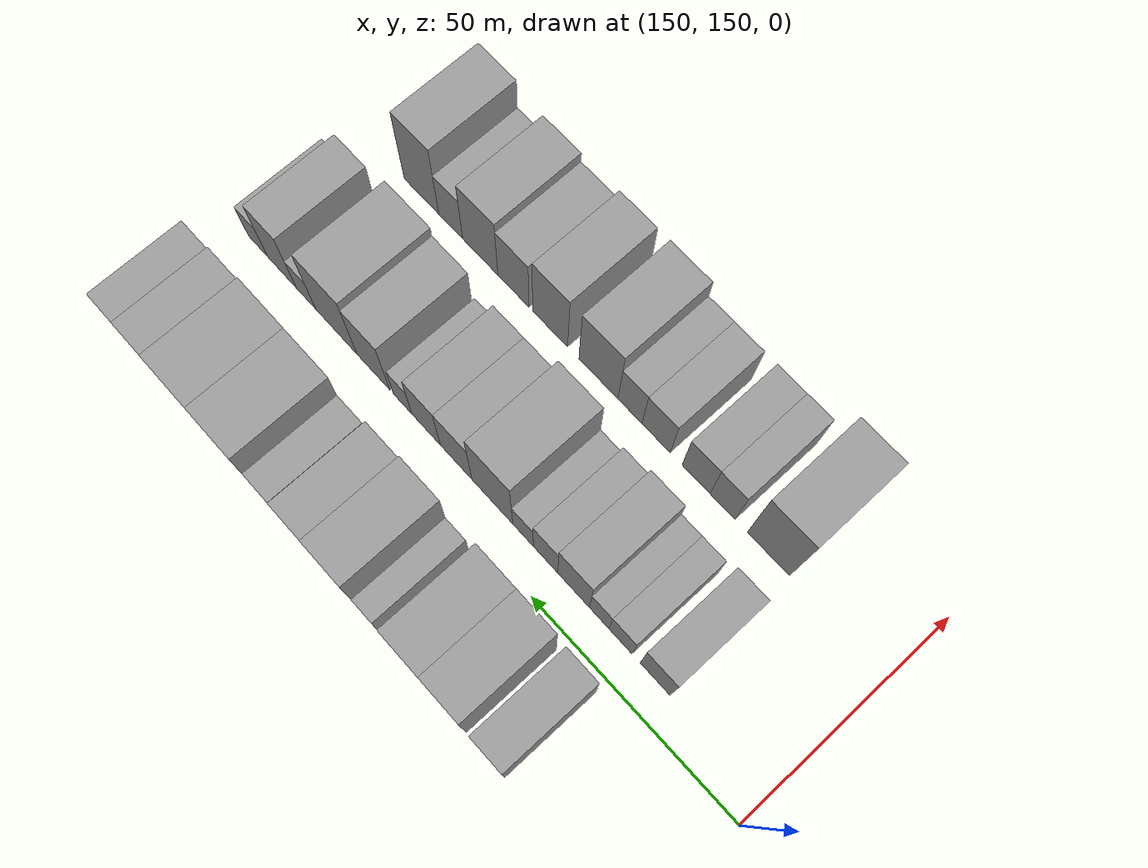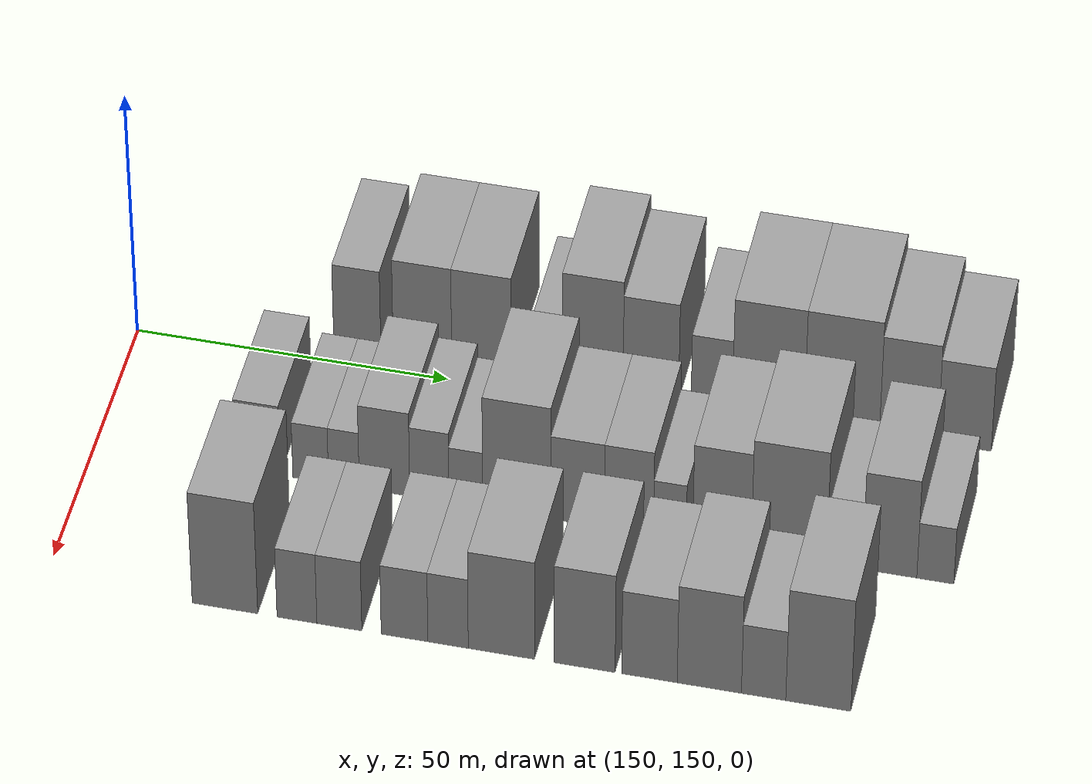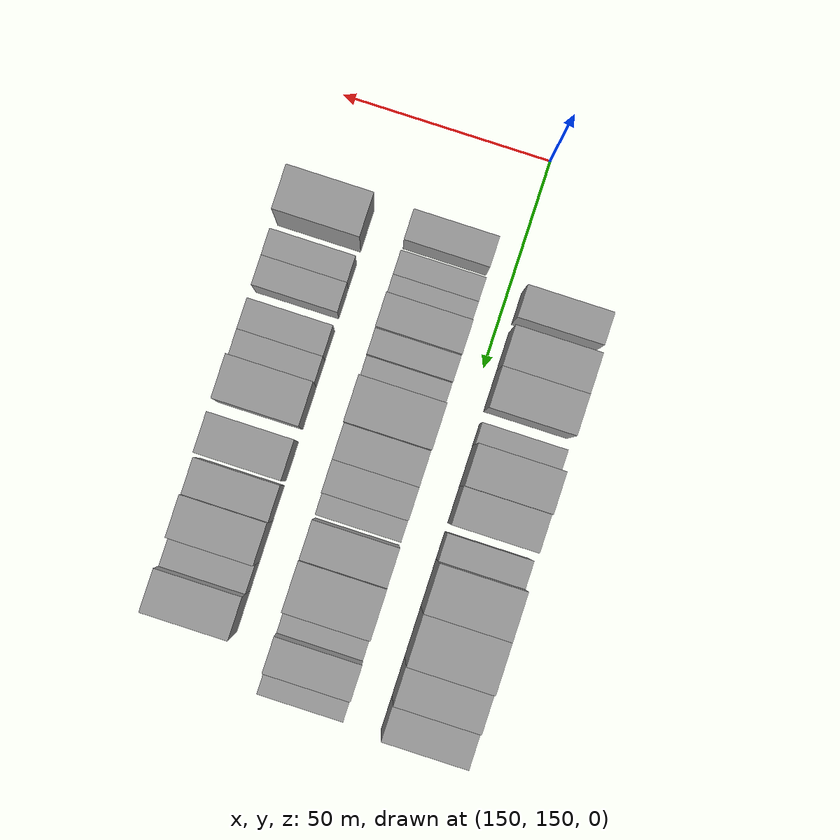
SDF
<sdf version="1.6">
 <world name="default">
  <model name="building_414">
   <static>1</static>
   <pose>137.0000 184.7679 0 0.000000 0.000000 0.000000</pose>
   <link name="link">
    <pose>0 0 9.00 0 0 0</pose>
    <collision name="collision"><geometry><box><size>20.0000 7.5813 18.0000</size></box></geometry></collision>
    <visual name="visual">
     <cast_shadows>0</cast_shadows>
     <geometry><box><size>20.0000 7.5813 18.0000</size></box></geometry>
     <material>
      <script>
       <uri>model://grey_wall/materials/scripts</uri>
       <uri>model://grey_wall/materials/textures</uri>
       <name>vrc/grey_wall</name>
      </script>
     </material>
    </visual>
   </link>
  </model>
  <model name="building_415">
   <static>1</static>
   <pose>137.0000 195.2548 0 0.000000 0.000000 0.000000</pose>
   <link name="link">
    <pose>0 0 10.50 0 0 0</pose>
    <collision name="collision"><geometry><box><size>20.0000 9.3926 21.0000</size></box></geometry></collision>
    <visual name="visual">
     <cast_shadows>0</cast_shadows>
     <geometry><box><size>20.0000 9.3926 21.0000</size></box></geometry>
     <material>
      <script>
       <uri>model://grey_wall/materials/scripts</uri>
       <uri>model://grey_wall/materials/textures</uri>
       <name>vrc/grey_wall</name>
      </script>
     </material>
    </visual>
   </link>
  </model>
  <model name="building_416">
   <static>1</static>
   <pose>137.0000 204.7293 0 0.000000 0.000000 0.000000</pose>
   <link name="link">
    <pose>0 0 10.50 0 0 0</pose>
    <collision name="collision"><geometry><box><size>20.0000 9.5563 21.0000</size></box></geometry></collision>
    <visual name="visual">
     <cast_shadows>0</cast_shadows>
     <geometry><box><size>20.0000 9.5563 21.0000</size></box></geometry>
     <material>
      <script>
       <uri>model://grey_wall/materials/scripts</uri>
       <uri>model://grey_wall/materials/textures</uri>
       <name>vrc/grey_wall</name>
      </script>
     </material>
    </visual>
   </link>
  </model>
  <model name="building_417">
   <static>1</static>
   <pose>137.0000 215.0780 0 0.000000 0.000000 0.000000</pose>
   <link name="link">
    <pose>0 0 6.00 0 0 0</pose>
    <collision name="collision"><geometry><box><size>20.0000 5.1411 12.0000</size></box></geometry></collision>
    <visual name="visual">
     <cast_shadows>0</cast_shadows>
     <geometry><box><size>20.0000 5.1411 12.0000</size></box></geometry>
     <material>
      <script>
       <uri>model://grey_wall/materials/scripts</uri>
       <uri>model://grey_wall/materials/textures</uri>
       <name>vrc/grey_wall</name>
      </script>
     </material>
    </visual>
   </link>
  </model>
  <model name="building_418">
   <static>1</static>
   <pose>137.0000 222.4908 0 0.000000 0.000000 0.000000</pose>
   <link name="link">
    <pose>0 0 12.00 0 0 0</pose>
    <collision name="collision"><geometry><box><size>20.0000 9.6844 24.0000</size></box></geometry></collision>
    <visual name="visual">
     <cast_shadows>0</cast_shadows>
     <geometry><box><size>20.0000 9.6844 24.0000</size></box></geometry>
     <material>
      <script>
       <uri>model://grey_wall/materials/scripts</uri>
       <uri>model://grey_wall/materials/textures</uri>
       <name>vrc/grey_wall</name>
      </script>
     </material>
    </visual>
   </link>
  </model>
  <model name="building_419">
   <static>1</static>
   <pose>137.0000 231.7524 0 0.000000 0.000000 0.000000</pose>
   <link name="link">
    <pose>0 0 10.50 0 0 0</pose>
    <collision name="collision"><geometry><box><size>20.0000 8.8389 21.0000</size></box></geometry></collision>
    <visual name="visual">
     <cast_shadows>0</cast_shadows>
     <geometry><box><size>20.0000 8.8389 21.0000</size></box></geometry>
     <material>
      <script>
       <uri>model://grey_wall/materials/scripts</uri>
       <uri>model://grey_wall/materials/textures</uri>
       <name>vrc/grey_wall</name>
      </script>
     </material>
    </visual>
   </link>
  </model>
  <model name="building_420">
   <static>1</static>
   <pose>137.0000 241.4376 0 0.000000 0.000000 0.000000</pose>
   <link name="link">
    <pose>0 0 7.50 0 0 0</pose>
    <collision name="collision"><geometry><box><size>20.0000 6.5314 15.0000</size></box></geometry></collision>
    <visual name="visual">
     <cast_shadows>0</cast_shadows>
     <geometry><box><size>20.0000 6.5314 15.0000</size></box></geometry>
     <material>
      <script>
       <uri>model://grey_wall/materials/scripts</uri>
       <uri>model://grey_wall/materials/textures</uri>
       <name>vrc/grey_wall</name>
      </script>
     </material>
    </visual>
   </link>
  </model>
  <model name="building_421">
   <static>1</static>
   <pose>137.0000 250.4019 0 0.000000 0.000000 0.000000</pose>
   <link name="link">
    <pose>0 0 12.00 0 0 0</pose>
    <collision name="collision"><geometry><box><size>20.0000 11.3972 24.0000</size></box></geometry></collision>
    <visual name="visual">
     <cast_shadows>0</cast_shadows>
     <geometry><box><size>20.0000 11.3972 24.0000</size></box></geometry>
     <material>
      <script>
       <uri>model://grey_wall/materials/scripts</uri>
       <uri>model://grey_wall/materials/textures</uri>
       <name>vrc/grey_wall</name>
      </script>
     </material>
    </visual>
   </link>
  </model>
  <model name="building_422">
   <static>1</static>
   <pose>137.0000 262.0437 0 0.000000 0.000000 0.000000</pose>
   <link name="link">
    <pose>0 0 12.00 0 0 0</pose>
    <collision name="collision"><geometry><box><size>20.0000 11.8865 24.0000</size></box></geometry></collision>
    <visual name="visual">
     <cast_shadows>0</cast_shadows>
     <geometry><box><size>20.0000 11.8865 24.0000</size></box></geometry>
     <material>
      <script>
       <uri>model://grey_wall/materials/scripts</uri>
       <uri>model://grey_wall/materials/textures</uri>
       <name>vrc/grey_wall</name>
      </script>
     </material>
    </visual>
   </link>
  </model>
  <model name="building_423">
   <static>1</static>
   <pose>137.0000 272.5657 0 0.000000 0.000000 0.000000</pose>
   <link name="link">
    <pose>0 0 10.50 0 0 0</pose>
    <collision name="collision"><geometry><box><size>20.0000 9.1575 21.0000</size></box></geometry></collision>
    <visual name="visual">
     <cast_shadows>0</cast_shadows>
     <geometry><box><size>20.0000 9.1575 21.0000</size></box></geometry>
     <material>
      <script>
       <uri>model://grey_wall/materials/scripts</uri>
       <uri>model://grey_wall/materials/textures</uri>
       <name>vrc/grey_wall</name>
      </script>
     </material>
    </visual>
   </link>
  </model>
  <model name="building_424">
   <static>1</static>
   <pose>137.0000 281.3518 0 0.000000 0.000000 0.000000</pose>
   <link name="link">
    <pose>0 0 9.00 0 0 0</pose>
    <collision name="collision"><geometry><box><size>20.0000 8.4146 18.0000</size></box></geometry></collision>
    <visual name="visual">
     <cast_shadows>0</cast_shadows>
     <geometry><box><size>20.0000 8.4146 18.0000</size></box></geometry>
     <material>
      <script>
       <uri>model://grey_wall/materials/scripts</uri>
       <uri>model://grey_wall/materials/textures</uri>
       <name>vrc/grey_wall</name>
      </script>
     </material>
    </visual>
   </link>
  </model>
  <model name="building_527">
   <static>1</static>
   <pose>166.0000 175.9674 0 0.000000 0.000000 0.000000</pose>
   <link name="link">
    <pose>0 0 7.50 0 0 0</pose>
    <collision name="collision"><geometry><box><size>20.0000 7.1979 15.0000</size></box></geometry></collision>
    <visual name="visual">
     <cast_shadows>0</cast_shadows>
     <geometry><box><size>20.0000 7.1979 15.0000</size></box></geometry>
     <material>
      <script>
       <uri>model://grey_wall/materials/scripts</uri>
       <uri>model://grey_wall/materials/textures</uri>
       <name>vrc/grey_wall</name>
      </script>
     </material>
    </visual>
   </link>
  </model>
  <model name="building_528">
   <static>1</static>
   <pose>166.0000 184.3919 0 0.000000 0.000000 0.000000</pose>
   <link name="link">
    <pose>0 0 6.00 0 0 0</pose>
    <collision name="collision"><geometry><box><size>20.0000 5.6510 12.0000</size></box></geometry></collision>
    <visual name="visual">
     <cast_shadows>0</cast_shadows>
     <geometry><box><size>20.0000 5.6510 12.0000</size></box></geometry>
     <material>
      <script>
       <uri>model://grey_wall/materials/scripts</uri>
       <uri>model://grey_wall/materials/textures</uri>
       <name>vrc/grey_wall</name>
      </script>
     </material>
    </visual>
   </link>
  </model>
  <model name="building_529">
   <static>1</static>
   <pose>166.0000 189.6509 0 0.000000 0.000000 0.000000</pose>
   <link name="link">
    <pose>0 0 6.00 0 0 0</pose>
    <collision name="collision"><geometry><box><size>20.0000 4.8671 12.0000</size></box></geometry></collision>
    <visual name="visual">
     <cast_shadows>0</cast_shadows>
     <geometry><box><size>20.0000 4.8671 12.0000</size></box></geometry>
     <material>
      <script>
       <uri>model://grey_wall/materials/scripts</uri>
       <uri>model://grey_wall/materials/textures</uri>
       <name>vrc/grey_wall</name>
      </script>
     </material>
    </visual>
   </link>
  </model>
  <model name="building_530">
   <static>1</static>
   <pose>166.0000 196.0736 0 0.000000 0.000000 0.000000</pose>
   <link name="link">
    <pose>0 0 9.00 0 0 0</pose>
    <collision name="collision"><geometry><box><size>20.0000 7.9782 18.0000</size></box></geometry></collision>
    <visual name="visual">
     <cast_shadows>0</cast_shadows>
     <geometry><box><size>20.0000 7.9782 18.0000</size></box></geometry>
     <material>
      <script>
       <uri>model://grey_wall/materials/scripts</uri>
       <uri>model://grey_wall/materials/textures</uri>
       <name>vrc/grey_wall</name>
      </script>
     </material>
    </visual>
   </link>
  </model>
  <model name="building_531">
   <static>1</static>
   <pose>166.0000 203.1543 0 0.000000 0.000000 0.000000</pose>
   <link name="link">
    <pose>0 0 7.50 0 0 0</pose>
    <collision name="collision"><geometry><box><size>20.0000 6.1832 15.0000</size></box></geometry></collision>
    <visual name="visual">
     <cast_shadows>0</cast_shadows>
     <geometry><box><size>20.0000 6.1832 15.0000</size></box></geometry>
     <material>
      <script>
       <uri>model://grey_wall/materials/scripts</uri>
       <uri>model://grey_wall/materials/textures</uri>
       <name>vrc/grey_wall</name>
      </script>
     </material>
    </visual>
   </link>
  </model>
  <model name="building_532">
   <static>1</static>
   <pose>166.0000 208.8924 0 0.000000 0.000000 0.000000</pose>
   <link name="link">
    <pose>0 0 6.00 0 0 0</pose>
    <collision name="collision"><geometry><box><size>20.0000 5.2931 12.0000</size></box></geometry></collision>
    <visual name="visual">
     <cast_shadows>0</cast_shadows>
     <geometry><box><size>20.0000 5.2931 12.0000</size></box></geometry>
     <material>
      <script>
       <uri>model://grey_wall/materials/scripts</uri>
       <uri>model://grey_wall/materials/textures</uri>
       <name>vrc/grey_wall</name>
      </script>
     </material>
    </visual>
   </link>
  </model>
  <model name="building_533">
   <static>1</static>
   <pose>166.0000 216.8849 0 0.000000 0.000000 0.000000</pose>
   <link name="link">
    <pose>0 0 12.00 0 0 0</pose>
    <collision name="collision"><geometry><box><size>20.0000 10.6918 24.0000</size></box></geometry></collision>
    <visual name="visual">
     <cast_shadows>0</cast_shadows>
     <geometry><box><size>20.0000 10.6918 24.0000</size></box></geometry>
     <material>
      <script>
       <uri>model://grey_wall/materials/scripts</uri>
       <uri>model://grey_wall/materials/textures</uri>
       <name>vrc/grey_wall</name>
      </script>
     </material>
    </visual>
   </link>
  </model>
  <model name="building_534">
   <static>1</static>
   <pose>166.0000 226.4181 0 0.000000 0.000000 0.000000</pose>
   <link name="link">
    <pose>0 0 9.00 0 0 0</pose>
    <collision name="collision"><geometry><box><size>20.0000 8.3746 18.0000</size></box></geometry></collision>
    <visual name="visual">
     <cast_shadows>0</cast_shadows>
     <geometry><box><size>20.0000 8.3746 18.0000</size></box></geometry>
     <material>
      <script>
       <uri>model://grey_wall/materials/scripts</uri>
       <uri>model://grey_wall/materials/textures</uri>
       <name>vrc/grey_wall</name>
      </script>
     </material>
    </visual>
   </link>
  </model>
  <model name="building_535">
   <static>1</static>
   <pose>166.0000 234.4471 0 0.000000 0.000000 0.000000</pose>
   <link name="link">
    <pose>0 0 9.00 0 0 0</pose>
    <collision name="collision"><geometry><box><size>20.0000 7.6834 18.0000</size></box></geometry></collision>
    <visual name="visual">
     <cast_shadows>0</cast_shadows>
     <geometry><box><size>20.0000 7.6834 18.0000</size></box></geometry>
     <material>
      <script>
       <uri>model://grey_wall/materials/scripts</uri>
       <uri>model://grey_wall/materials/textures</uri>
       <name>vrc/grey_wall</name>
      </script>
     </material>
    </visual>
   </link>
  </model>
  <model name="building_536">
   <static>1</static>
   <pose>166.0000 240.8388 0 0.000000 0.000000 0.000000</pose>
   <link name="link">
    <pose>0 0 6.00 0 0 0</pose>
    <collision name="collision"><geometry><box><size>20.0000 5.1000 12.0000</size></box></geometry></collision>
    <visual name="visual">
     <cast_shadows>0</cast_shadows>
     <geometry><box><size>20.0000 5.1000 12.0000</size></box></geometry>
     <material>
      <script>
       <uri>model://grey_wall/materials/scripts</uri>
       <uri>model://grey_wall/materials/textures</uri>
       <name>vrc/grey_wall</name>
      </script>
     </material>
    </visual>
   </link>
  </model>
  <model name="building_537">
   <static>1</static>
   <pose>166.0000 248.9480 0 0.000000 0.000000 0.000000</pose>
   <link name="link">
    <pose>0 0 10.50 0 0 0</pose>
    <collision name="collision"><geometry><box><size>20.0000 9.1184 21.0000</size></box></geometry></collision>
    <visual name="visual">
     <cast_shadows>0</cast_shadows>
     <geometry><box><size>20.0000 9.1184 21.0000</size></box></geometry>
     <material>
      <script>
       <uri>model://grey_wall/materials/scripts</uri>
       <uri>model://grey_wall/materials/textures</uri>
       <name>vrc/grey_wall</name>
      </script>
     </material>
    </visual>
   </link>
  </model>
  <model name="building_538">
   <static>1</static>
   <pose>166.0000 259.3509 0 0.000000 0.000000 0.000000</pose>
   <link name="link">
    <pose>0 0 12.00 0 0 0</pose>
    <collision name="collision"><geometry><box><size>20.0000 11.6875 24.0000</size></box></geometry></collision>
    <visual name="visual">
     <cast_shadows>0</cast_shadows>
     <geometry><box><size>20.0000 11.6875 24.0000</size></box></geometry>
     <material>
      <script>
       <uri>model://grey_wall/materials/scripts</uri>
       <uri>model://grey_wall/materials/textures</uri>
       <name>vrc/grey_wall</name>
      </script>
     </material>
    </visual>
   </link>
  </model>
  <model name="building_539">
   <static>1</static>
   <pose>166.0000 267.9820 0 0.000000 0.000000 0.000000</pose>
   <link name="link">
    <pose>0 0 6.00 0 0 0</pose>
    <collision name="collision"><geometry><box><size>20.0000 5.5747 12.0000</size></box></geometry></collision>
    <visual name="visual">
     <cast_shadows>0</cast_shadows>
     <geometry><box><size>20.0000 5.5747 12.0000</size></box></geometry>
     <material>
      <script>
       <uri>model://grey_wall/materials/scripts</uri>
       <uri>model://grey_wall/materials/textures</uri>
       <name>vrc/grey_wall</name>
      </script>
     </material>
    </visual>
   </link>
  </model>
  <model name="building_540">
   <static>1</static>
   <pose>166.0000 274.9764 0 0.000000 0.000000 0.000000</pose>
   <link name="link">
    <pose>0 0 10.50 0 0 0</pose>
    <collision name="collision"><geometry><box><size>20.0000 8.4141 21.0000</size></box></geometry></collision>
    <visual name="visual">
     <cast_shadows>0</cast_shadows>
     <geometry><box><size>20.0000 8.4141 21.0000</size></box></geometry>
     <material>
      <script>
       <uri>model://grey_wall/materials/scripts</uri>
       <uri>model://grey_wall/materials/textures</uri>
       <name>vrc/grey_wall</name>
      </script>
     </material>
    </visual>
   </link>
  </model>
  <model name="building_541">
   <static>1</static>
   <pose>166.0000 282.0380 0 0.000000 0.000000 0.000000</pose>
   <link name="link">
    <pose>0 0 6.00 0 0 0</pose>
    <collision name="collision"><geometry><box><size>20.0000 5.7090 12.0000</size></box></geometry></collision>
    <visual name="visual">
     <cast_shadows>0</cast_shadows>
     <geometry><box><size>20.0000 5.7090 12.0000</size></box></geometry>
     <material>
      <script>
       <uri>model://grey_wall/materials/scripts</uri>
       <uri>model://grey_wall/materials/textures</uri>
       <name>vrc/grey_wall</name>
      </script>
     </material>
    </visual>
   </link>
  </model>
  <model name="building_640">
   <static>1</static>
   <pose>195.0000 178.1924 0 0.000000 0.000000 0.000000</pose>
   <link name="link">
    <pose>0 0 12.00 0 0 0</pose>
    <collision name="collision"><geometry><box><size>20.0000 10.2207 24.0000</size></box></geometry></collision>
    <visual name="visual">
     <cast_shadows>0</cast_shadows>
     <geometry><box><size>20.0000 10.2207 24.0000</size></box></geometry>
     <material>
      <script>
       <uri>model://grey_wall/materials/scripts</uri>
       <uri>model://grey_wall/materials/textures</uri>
       <name>vrc/grey_wall</name>
      </script>
     </material>
    </visual>
   </link>
  </model>
  <model name="building_641">
   <static>1</static>
   <pose>195.0000 189.4045 0 0.000000 0.000000 0.000000</pose>
   <link name="link">
    <pose>0 0 7.50 0 0 0</pose>
    <collision name="collision"><geometry><box><size>20.0000 6.2034 15.0000</size></box></geometry></collision>
    <visual name="visual">
     <cast_shadows>0</cast_shadows>
     <geometry><box><size>20.0000 6.2034 15.0000</size></box></geometry>
     <material>
      <script>
       <uri>model://grey_wall/materials/scripts</uri>
       <uri>model://grey_wall/materials/textures</uri>
       <name>vrc/grey_wall</name>
      </script>
     </material>
    </visual>
   </link>
  </model>
  <model name="building_642">
   <static>1</static>
   <pose>195.0000 195.9960 0 0.000000 0.000000 0.000000</pose>
   <link name="link">
    <pose>0 0 7.50 0 0 0</pose>
    <collision name="collision"><geometry><box><size>20.0000 6.9796 15.0000</size></box></geometry></collision>
    <visual name="visual">
     <cast_shadows>0</cast_shadows>
     <geometry><box><size>20.0000 6.9796 15.0000</size></box></geometry>
     <material>
      <script>
       <uri>model://grey_wall/materials/scripts</uri>
       <uri>model://grey_wall/materials/textures</uri>
       <name>vrc/grey_wall</name>
      </script>
     </material>
    </visual>
   </link>
  </model>
  <model name="building_643">
   <static>1</static>
   <pose>195.0000 206.0964 0 0.000000 0.000000 0.000000</pose>
   <link name="link">
    <pose>0 0 7.50 0 0 0</pose>
    <collision name="collision"><geometry><box><size>20.0000 7.2213 15.0000</size></box></geometry></collision>
    <visual name="visual">
     <cast_shadows>0</cast_shadows>
     <geometry><box><size>20.0000 7.2213 15.0000</size></box></geometry>
     <material>
      <script>
       <uri>model://grey_wall/materials/scripts</uri>
       <uri>model://grey_wall/materials/textures</uri>
       <name>vrc/grey_wall</name>
      </script>
     </material>
    </visual>
   </link>
  </model>
  <model name="building_644">
   <static>1</static>
   <pose>195.0000 212.8248 0 0.000000 0.000000 0.000000</pose>
   <link name="link">
    <pose>0 0 7.50 0 0 0</pose>
    <collision name="collision"><geometry><box><size>20.0000 6.2354 15.0000</size></box></geometry></collision>
    <visual name="visual">
     <cast_shadows>0</cast_shadows>
     <geometry><box><size>20.0000 6.2354 15.0000</size></box></geometry>
     <material>
      <script>
       <uri>model://grey_wall/materials/scripts</uri>
       <uri>model://grey_wall/materials/textures</uri>
       <name>vrc/grey_wall</name>
      </script>
     </material>
    </visual>
   </link>
  </model>
  <model name="building_645">
   <static>1</static>
   <pose>195.0000 221.0544 0 0.000000 0.000000 0.000000</pose>
   <link name="link">
    <pose>0 0 10.50 0 0 0</pose>
    <collision name="collision"><geometry><box><size>20.0000 10.2237 21.0000</size></box></geometry></collision>
    <visual name="visual">
     <cast_shadows>0</cast_shadows>
     <geometry><box><size>20.0000 10.2237 21.0000</size></box></geometry>
     <material>
      <script>
       <uri>model://grey_wall/materials/scripts</uri>
       <uri>model://grey_wall/materials/textures</uri>
       <name>vrc/grey_wall</name>
      </script>
     </material>
    </visual>
   </link>
  </model>
  <model name="building_646">
   <static>1</static>
   <pose>195.0000 233.8490 0 0.000000 0.000000 0.000000</pose>
   <link name="link">
    <pose>0 0 10.50 0 0 0</pose>
    <collision name="collision"><geometry><box><size>20.0000 9.3653 21.0000</size></box></geometry></collision>
    <visual name="visual">
     <cast_shadows>0</cast_shadows>
     <geometry><box><size>20.0000 9.3653 21.0000</size></box></geometry>
     <material>
      <script>
       <uri>model://grey_wall/materials/scripts</uri>
       <uri>model://grey_wall/materials/textures</uri>
       <name>vrc/grey_wall</name>
      </script>
     </material>
    </visual>
   </link>
  </model>
  <model name="building_647">
   <static>1</static>
   <pose>195.0000 243.7857 0 0.000000 0.000000 0.000000</pose>
   <link name="link">
    <pose>0 0 9.00 0 0 0</pose>
    <collision name="collision"><geometry><box><size>20.0000 8.5081 18.0000</size></box></geometry></collision>
    <visual name="visual">
     <cast_shadows>0</cast_shadows>
     <geometry><box><size>20.0000 8.5081 18.0000</size></box></geometry>
     <material>
      <script>
       <uri>model://grey_wall/materials/scripts</uri>
       <uri>model://grey_wall/materials/textures</uri>
       <name>vrc/grey_wall</name>
      </script>
     </material>
    </visual>
   </link>
  </model>
  <model name="building_648">
   <static>1</static>
   <pose>195.0000 252.9424 0 0.000000 0.000000 0.000000</pose>
   <link name="link">
    <pose>0 0 10.50 0 0 0</pose>
    <collision name="collision"><geometry><box><size>20.0000 9.8053 21.0000</size></box></geometry></collision>
    <visual name="visual">
     <cast_shadows>0</cast_shadows>
     <geometry><box><size>20.0000 9.8053 21.0000</size></box></geometry>
     <material>
      <script>
       <uri>model://grey_wall/materials/scripts</uri>
       <uri>model://grey_wall/materials/textures</uri>
       <name>vrc/grey_wall</name>
      </script>
     </material>
    </visual>
   </link>
  </model>
  <model name="building_649">
   <static>1</static>
   <pose>195.0000 261.2264 0 0.000000 0.000000 0.000000</pose>
   <link name="link">
    <pose>0 0 7.50 0 0 0</pose>
    <collision name="collision"><geometry><box><size>20.0000 6.7627 15.0000</size></box></geometry></collision>
    <visual name="visual">
     <cast_shadows>0</cast_shadows>
     <geometry><box><size>20.0000 6.7627 15.0000</size></box></geometry>
     <material>
      <script>
       <uri>model://grey_wall/materials/scripts</uri>
       <uri>model://grey_wall/materials/textures</uri>
       <name>vrc/grey_wall</name>
      </script>
     </material>
    </visual>
   </link>
  </model>
  <model name="building_650">
   <static>1</static>
   <pose>195.0000 269.5606 0 0.000000 0.000000 0.000000</pose>
   <link name="link">
    <pose>0 0 12.00 0 0 0</pose>
    <collision name="collision"><geometry><box><size>20.0000 9.9056 24.0000</size></box></geometry></collision>
    <visual name="visual">
     <cast_shadows>0</cast_shadows>
     <geometry><box><size>20.0000 9.9056 24.0000</size></box></geometry>
     <material>
      <script>
       <uri>model://grey_wall/materials/scripts</uri>
       <uri>model://grey_wall/materials/textures</uri>
       <name>vrc/grey_wall</name>
      </script>
     </material>
    </visual>
   </link>
  </model>
 </world>
</sdf>
